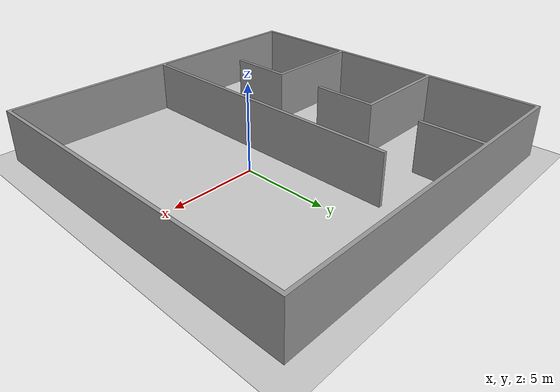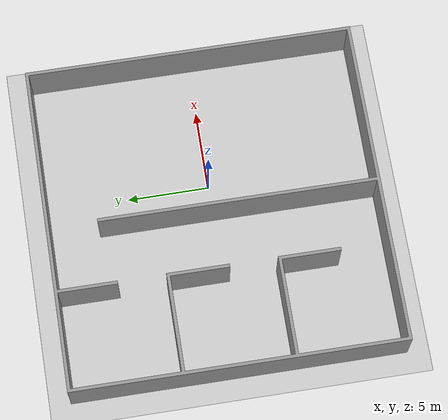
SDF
<?xml version="1.0" ?>
<sdf version="1.9">
  <world name='robotnik_simple'>
    <physics type='ode'>
      <max_step_size>0.02</max_step_size>
      <real_time_factor>1.0</real_time_factor>
    </physics>
    <plugin name='gz::sim::systems::Physics' filename='libgz-sim-physics-system.so'/>
    <plugin name='gz::sim::systems::UserCommands' filename='libgz-sim-user-commands-system.so'/>
    <plugin name='gz::sim::systems::SceneBroadcaster' filename='libgz-sim-scene-broadcaster-system.so'/>
    <plugin name="gz::sim::systems::Sensors" filename="libgz-sim-sensors-system.so">
      <render_engine>ogre2</render_engine>
    </plugin>
    <plugin name="gz::sim::systems::Imu" filename="libgz-sim-imu-system.so"/>
    <plugin name="gz::sim::systems::NavSat" filename="libgz-sim-navsat-system.so"/>

    <scene>
      <ambient>1 1 1</ambient>
      <grid>false</grid>
      <sky></sky>
    </scene>

    <light type="directional" name="sun">
      <cast_shadows>true</cast_shadows>
      <pose>0 0 20 -1.3 0 0.5</pose>
      <diffuse>0.8 0.8 0.8 1</diffuse>
      <specular>0.01 0.01 0.01 1</specular>
      <intensity>2</intensity>
      <visualize>false</visualize>
    </light>

    <model name="ground_plane">
      <static>true</static>
      <link name="link">
        <collision name="collision">
          <geometry>
            <plane>
              <normal>0 0 1</normal>
            </plane>
          </geometry>
        </collision>
        <visual name="visual">
          <geometry>
            <plane>
              <normal>0 0 1</normal>
              <size>100 100</size>
            </plane>
          </geometry>
          <material>
            <ambient>0.8 0.8 0.8 1</ambient>
            <diffuse>0.8 0.8 0.8 1</diffuse>
            <specular>0.8 0.8 0.8 1</specular>
          </material>
        </visual>
      </link>
    </model>

    <include>
      <uri>model://robotnik_gazebo_ignition/models/warehouse_simple</uri>
      <name>warehouse</name>
      <pose>-2 0 0 0 0 1.57</pose>
    </include>
  </world>
</sdf>

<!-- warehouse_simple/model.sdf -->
<sdf version='1.6'>
  <model name='warehouse'>
    <link name='link_0'>
      <pose frame=''>0 0 0 0 -0 0</pose>
      <inertial>
        <mass>1</mass>
        <inertia>
          <ixx>0.166667</ixx>
          <ixy>0</ixy>
          <ixz>0</ixz>
          <iyy>0.166667</iyy>
          <iyz>0</iyz>
          <izz>0.166667</izz>
        </inertia>
        <pose frame=''>0 0 0 0 -0 0</pose>
      </inertial>
      <self_collide>0</self_collide>
      <kinematic>0</kinematic>
      <gravity>1</gravity>
      <visual name='visual'>
        <pose frame=''>0 0 0 0 -0 0</pose>
        <geometry>
          <mesh>
            <uri>meshes/warehouse.stl</uri>
            <scale>1 1 1</scale>
          </mesh>
        </geometry>
        <material>
          <lighting>1</lighting>
          <script>
            <uri>file://media/materials/scripts/gazebo.material</uri>
            <name>Gazebo/Grey</name>
          </script>
          <ambient>0.95 0.95 0.95 1</ambient>
          <diffuse>0.95 0.95 0.95 1</diffuse>
          <specular>0.01 0.01 0.01 1</specular>
          <emissive>0 0 0 1</emissive>
          <shader type='vertex'>
            <normal_map>__default__</normal_map>
          </shader>
        </material>
        <cast_shadows>1</cast_shadows>
        <transparency>0</transparency>
      </visual>
      <collision name='collision'>
        <laser_retro>0</laser_retro>
        <max_contacts>10</max_contacts>
        <pose frame=''>0 0 0 0 -0 0</pose>
        <geometry>
          <mesh>
            <uri>meshes/warehouse.stl</uri>
          </mesh>
        </geometry>
      </collision>
    </link>
    <static>1</static>
    <allow_auto_disable>1</allow_auto_disable>
  </model>
</sdf>
